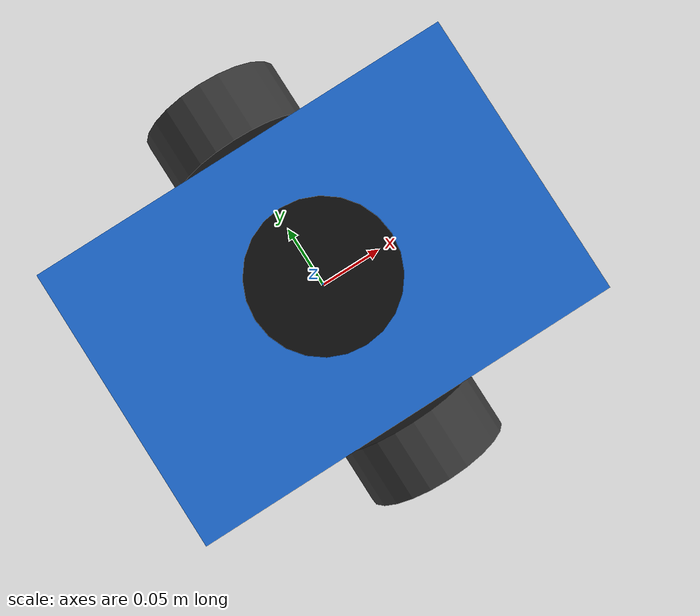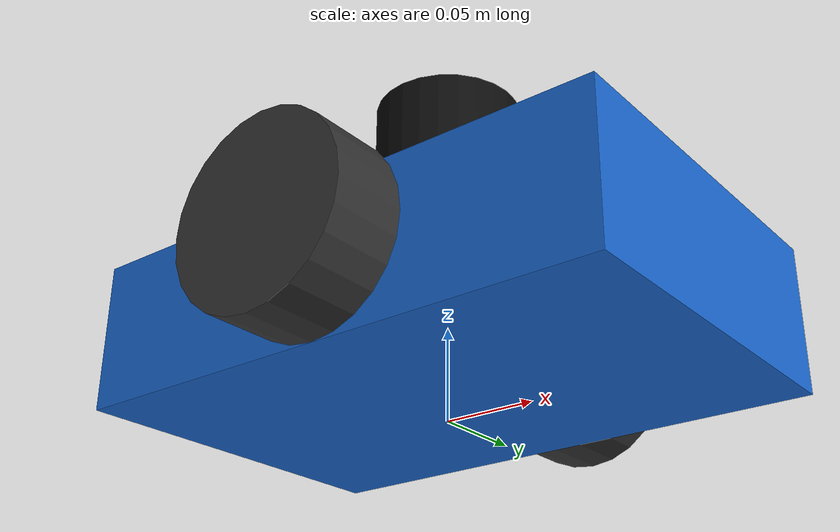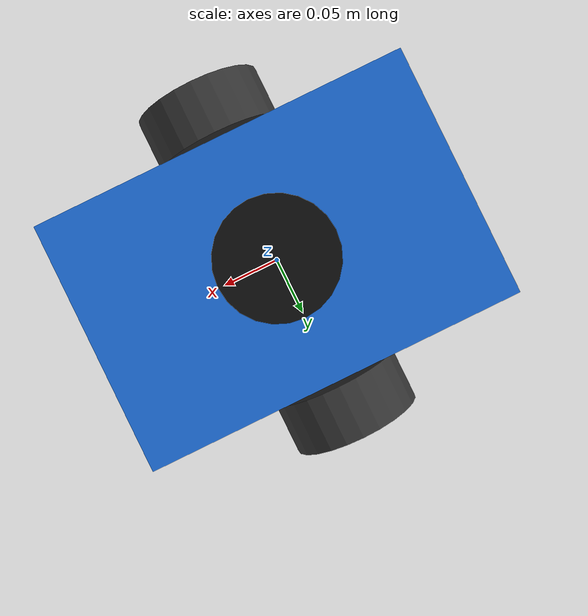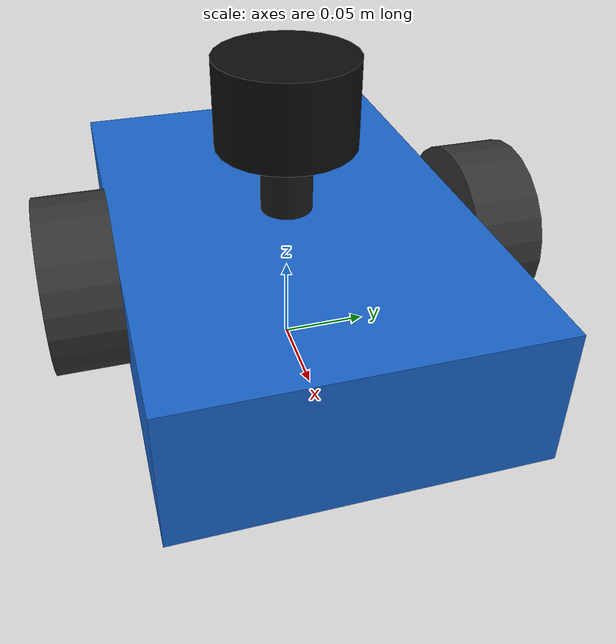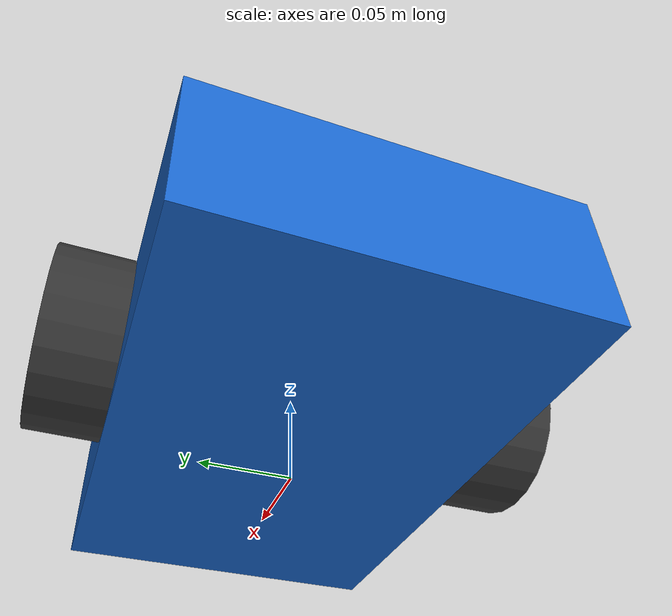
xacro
<?xml version="1.0"?>
<robot name="obstacle_avoider_robot" xmlns:xacro="http://www.ros.org/wiki/xacro">

  <!-- ============================================================
       Paramètres généraux du robot
  ============================================================ -->
  <xacro:property name="robot_name" value="obstacle_avoider_robot"/>

  <!-- Dimensions châssis -->
  <xacro:property name="base_length"  value="0.30"/>
  <xacro:property name="base_width"   value="0.20"/>
  <xacro:property name="base_height"  value="0.08"/>
  <xacro:property name="base_mass"    value="2.0"/>

  <!-- Roues motrices -->
  <xacro:property name="wheel_radius" value="0.05"/>
  <xacro:property name="wheel_width"  value="0.04"/>
  <xacro:property name="wheel_mass"   value="0.3"/>
  <xacro:property name="wheel_offset_y" value="0.12"/>

  <!-- Roulette avant -->
  <xacro:property name="caster_radius" value="0.025"/>
  <xacro:property name="caster_mass"   value="0.1"/>

  <!-- Capteur LiDAR -->
  <xacro:property name="lidar_radius" value="0.04"/>
  <xacro:property name="lidar_height" value="0.05"/>
  <xacro:property name="lidar_mass"   value="0.2"/>

  <!-- ============================================================
       Macros inertielles
  ============================================================ -->
  <xacro:macro name="box_inertia" params="m l w h">
    <inertial>
      <mass value="${m}"/>
      <inertia
        ixx="${m*(w*w + h*h)/12.0}"
        ixy="0.0" ixz="0.0"
        iyy="${m*(l*l + h*h)/12.0}"
        iyz="0.0"
        izz="${m*(l*l + w*w)/12.0}"/>
    </inertial>
  </xacro:macro>

  <xacro:macro name="cylinder_inertia" params="m r h">
    <inertial>
      <mass value="${m}"/>
      <inertia
        ixx="${m*(3*r*r + h*h)/12.0}"
        ixy="0.0" ixz="0.0"
        iyy="${m*(3*r*r + h*h)/12.0}"
        iyz="0.0"
        izz="${m*r*r/2.0}"/>
    </inertial>
  </xacro:macro>

  <xacro:macro name="sphere_inertia" params="m r">
    <inertial>
      <mass value="${m}"/>
      <inertia
        ixx="${2.0*m*r*r/5.0}"
        ixy="0.0" ixz="0.0"
        iyy="${2.0*m*r*r/5.0}"
        iyz="0.0"
        izz="${2.0*m*r*r/5.0}"/>
    </inertial>
  </xacro:macro>

  <!-- ============================================================
       Macro roue
  ============================================================ -->
  <xacro:macro name="wheel" params="name y_offset">
    <link name="${name}">
      <xacro:cylinder_inertia m="${wheel_mass}" r="${wheel_radius}" h="${wheel_width}"/>
      <visual>
        <geometry>
          <cylinder radius="${wheel_radius}" length="${wheel_width}"/>
        </geometry>
        <material name="dark_grey">
          <color rgba="0.2 0.2 0.2 1.0"/>
        </material>
      </visual>
      <collision>
        <geometry>
          <cylinder radius="${wheel_radius}" length="${wheel_width}"/>
        </geometry>
      </collision>
    </link>

    <joint name="${name}_joint" type="continuous">
      <parent link="base_link"/>
      <child  link="${name}"/>
      <origin xyz="0.0 ${y_offset} ${-base_height/2.0 + wheel_radius}"
              rpy="${pi/2.0} 0.0 0.0"/>
      <axis xyz="0 0 -1"/>
    </joint>

    <!-- Gazebo friction pour la roue -->
    <gazebo reference="${name}">
      <mu1>1.0</mu1>
      <mu2>1.0</mu2>
      <kp>500000</kp>
      <kd>10</kd>
      <material>Gazebo/DarkGrey</material>
    </gazebo>
  </xacro:macro>

  <!-- ============================================================
       Lien de base (footprint)
  ============================================================ -->
  <link name="base_footprint"/>

  <joint name="base_footprint_joint" type="fixed">
    <parent link="base_footprint"/>
    <child  link="base_link"/>
    <origin xyz="0 0 ${wheel_radius}" rpy="0 0 0"/>
  </joint>

  <!-- ============================================================
       Châssis principal
  ============================================================ -->
  <link name="base_link">
    <xacro:box_inertia m="${base_mass}" l="${base_length}" w="${base_width}" h="${base_height}"/>
    <visual>
      <origin xyz="0 0 0" rpy="0 0 0"/>
      <geometry>
        <box size="${base_length} ${base_width} ${base_height}"/>
      </geometry>
      <material name="blue">
        <color rgba="0.1 0.4 0.8 1.0"/>
      </material>
    </visual>
    <collision>
      <origin xyz="0 0 0" rpy="0 0 0"/>
      <geometry>
        <box size="${base_length} ${base_width} ${base_height}"/>
      </geometry>
    </collision>
  </link>

  <gazebo reference="base_link">
    <material>Gazebo/Blue</material>
  </gazebo>

  <!-- ============================================================
       Roues motrices
  ============================================================ -->
  <xacro:wheel name="left_wheel"  y_offset="${wheel_offset_y}"/>
  <xacro:wheel name="right_wheel" y_offset="${-wheel_offset_y}"/>

  <!-- ============================================================
       Roulette avant (caster)
  ============================================================ -->
  <link name="caster_link">
    <xacro:sphere_inertia m="${caster_mass}" r="${caster_radius}"/>
    <visual>
      <geometry>
        <sphere radius="${caster_radius}"/>
      </geometry>
      <material name="grey">
        <color rgba="0.5 0.5 0.5 1.0"/>
      </material>
    </visual>
    <collision>
      <geometry>
        <sphere radius="${caster_radius}"/>
      </geometry>
    </collision>
  </link>

  <joint name="caster_joint" type="fixed">
    <parent link="base_link"/>
    <child  link="caster_link"/>
    <origin xyz="${base_length/2.0 - caster_radius} 0.0
                 ${-base_height/2.0 - caster_radius + wheel_radius}"
            rpy="0 0 0"/>
  </joint>

  <gazebo reference="caster_link">
    <mu1>0.0</mu1>
    <mu2>0.0</mu2>
    <material>Gazebo/Grey</material>
  </gazebo>

  <!-- ============================================================
       Support LiDAR
  ============================================================ -->
  <link name="lidar_support_link">
    <inertial>
      <mass value="0.05"/>
      <inertia ixx="0.0001" ixy="0" ixz="0"
               iyy="0.0001" iyz="0" izz="0.0001"/>
    </inertial>
    <visual>
      <geometry>
        <cylinder radius="0.015" length="0.04"/>
      </geometry>
      <material name="black">
        <color rgba="0.1 0.1 0.1 1.0"/>
      </material>
    </visual>
    <collision>
      <geometry>
        <cylinder radius="0.015" length="0.04"/>
      </geometry>
    </collision>
  </link>

  <joint name="lidar_support_joint" type="fixed">
    <parent link="base_link"/>
    <child  link="lidar_support_link"/>
    <origin xyz="0.0 0.0 ${base_height/2.0 + 0.02}" rpy="0 0 0"/>
  </joint>

  <!-- ============================================================
       LiDAR
  ============================================================ -->
  <link name="lidar_link">
    <xacro:cylinder_inertia m="${lidar_mass}" r="${lidar_radius}" h="${lidar_height}"/>
    <visual>
      <geometry>
        <cylinder radius="${lidar_radius}" length="${lidar_height}"/>
      </geometry>
      <material name="black_lidar">
        <color rgba="0.05 0.05 0.05 1.0"/>
      </material>
    </visual>
    <collision>
      <geometry>
        <cylinder radius="${lidar_radius}" length="${lidar_height}"/>
      </geometry>
    </collision>
  </link>

  <joint name="lidar_joint" type="fixed">
    <parent link="lidar_support_link"/>
    <child  link="lidar_link"/>
    <origin xyz="0.0 0.0 ${0.02 + lidar_height/2.0}" rpy="0 0 0"/>
  </joint>

  <gazebo reference="lidar_link">
    <material>Gazebo/Black</material>
    <sensor type="ray" name="lidar_sensor">
      <pose>0 0 0 0 0 0</pose>
      <visualize>true</visualize>
      <update_rate>10</update_rate>
      <ray>
        <scan>
          <horizontal>
            <samples>360</samples>
            <resolution>1</resolution>
            <min_angle>-3.14159</min_angle>
            <max_angle>3.14159</max_angle>
          </horizontal>
        </scan>
        <range>
          <min>0.12</min>
          <max>8.0</max>
          <resolution>0.01</resolution>
        </range>
        <noise>
          <type>gaussian</type>
          <mean>0.0</mean>
          <stddev>0.01</stddev>
        </noise>
      </ray>
      <plugin name="lidar_plugin"
              filename="libgazebo_ros_ray_sensor.so">
        <ros>
          <remapping>~/out:=scan</remapping>
        </ros>
        <output_type>sensor_msgs/LaserScan</output_type>
        <frame_name>lidar_link</frame_name>
      </plugin>
    </sensor>
  </gazebo>

  <!-- ============================================================
       Plugin de contrôle différentiel
  ============================================================ -->
  <gazebo>
    <plugin name="differential_drive_controller"
            filename="libgazebo_ros_diff_drive.so">
      <ros>
        <remapping>cmd_vel:=cmd_vel</remapping>
        <remapping>odom:=odom</remapping>
      </ros>
      <left_joint>left_wheel_joint</left_joint>
      <right_joint>right_wheel_joint</right_joint>
      <wheel_separation>${2.0 * wheel_offset_y}</wheel_separation>
      <wheel_diameter>${2.0 * wheel_radius}</wheel_diameter>
      <max_wheel_torque>20</max_wheel_torque>
      <max_wheel_acceleration>1.0</max_wheel_acceleration>
      <publish_odom>true</publish_odom>
      <publish_odom_tf>true</publish_odom_tf>
      <publish_wheel_tf>false</publish_wheel_tf>
      <odometry_frame>odom</odometry_frame>
      <robot_base_frame>base_footprint</robot_base_frame>
    </plugin>
  </gazebo>

</robot>
